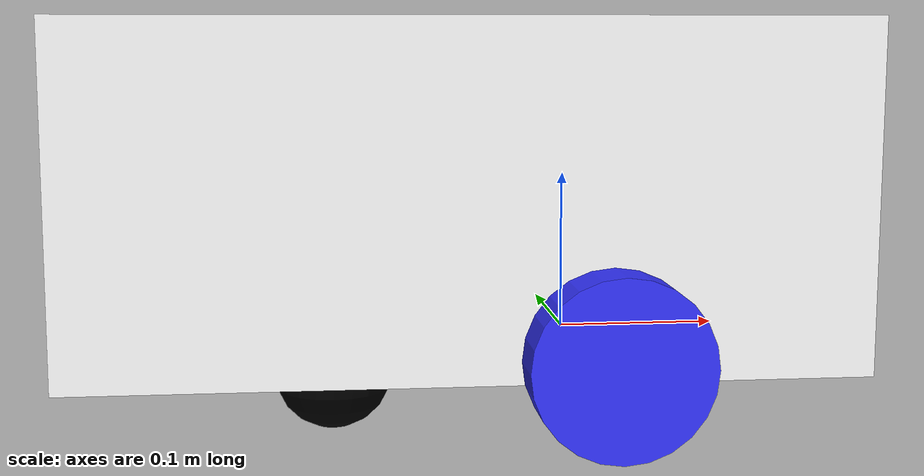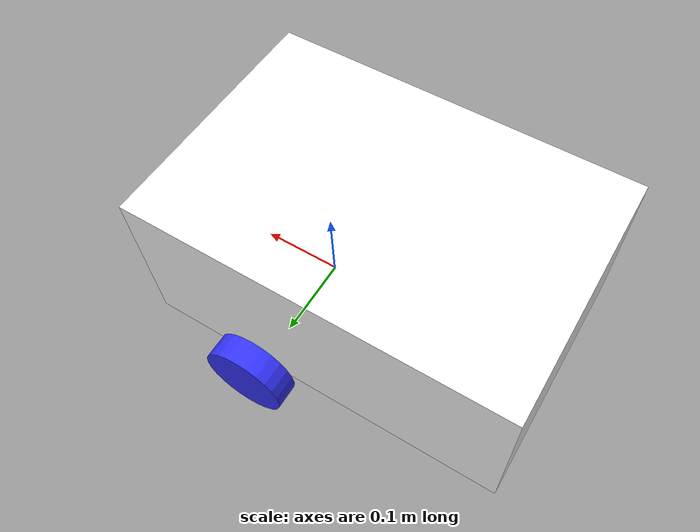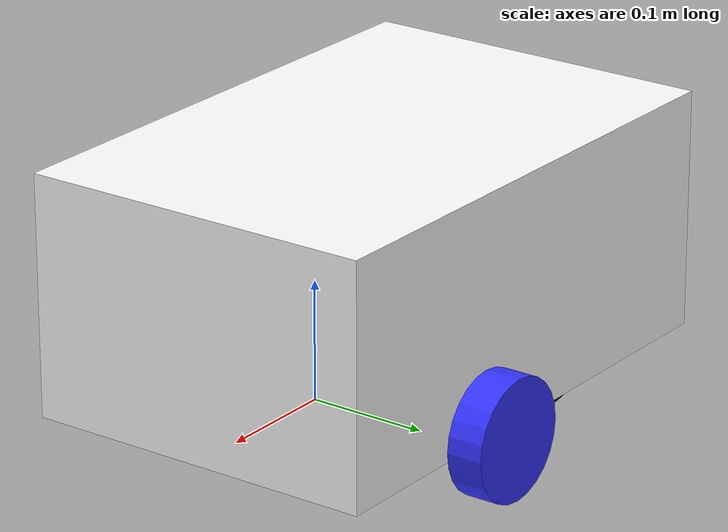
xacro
<?xml version="1.0"?>
<robot xmlns:xacro="http://www.ros.org/wiki/xacro" >

    <xacro:include filename="inertial_macros.xacro"/>

    <material name="white">
        <color rgba="1 1 1 1" />
    </material>

    <material name="orange">
        <color rgba="1 0.3 0.1 1"/>
    </material>

    <material name="blue">
        <color rgba="0.2 0.2 1 1"/>
    </material>

    <material name="black">
        <color rgba="0 0 0 1"/>
    </material>

    <!-- BASE LINK -->
    <link name="base_link"> </link>

        <!-- BASE_FOOTPRINT LINK -->

    <joint name="base_footprint_joint" type="fixed">
        <parent link="base_link"/>
        <child link="base_footprint"/>
        <origin xyz="0 0 0" rpy="0 0 0"/>
    </joint>

    <link name="base_footprint">
    </link>

    <!-- CHASSIS LINK -->
    <joint name="chassis_joint" type="fixed">
        <parent link="base_link"/>
        <child link="chassis"/>
        <origin xyz="-0.30 0 0"/>
    </joint>

    <link name="chassis">
        <visual>
            <origin xyz="0.225 0 0.1"/>
            <geometry>
                <box size="0.45 0.30 0.2"/>
            </geometry>
            <material name="white"/>
        </visual>
        <collision>
            <origin xyz="0.225 0 0.1"/>
            <geometry>
                <box size="0.45 0.30 0.2"/>
            </geometry>
            <material name="white"/>
        </collision>
        <xacro:inertial_box mass="1.5" x="0.45" y="0.3" z="0.2">
            <origin xyz="0.225 0 0.1" rpy="0 0 0"/>
        </xacro:inertial_box>
    </link>

    <gazebo reference="chassis">
        <material>Gazebo/White</material>
    </gazebo>

    <!-- LEFT WHEEL LINK -->
    <joint name="left_wheel_joint" type="continuous">
        <parent link="base_link"/>
        <child link="left_wheel"/>
        <origin xyz="0 0.175 0.016" rpy="-${pi/2} 0 0" />
        <axis xyz="0 0 1"/>
    </joint>

    <link name="left_wheel">
        <visual>
            <geometry>
                <cylinder radius="0.05" length="0.03"/>
            </geometry>
            <material name="blue"/>
        </visual>
        <collision>
            <geometry>
                <cylinder radius="0.05" length="0.03"/>
            </geometry>
            <material name="blue"/>
        </collision>
        <xacro:inertial_cylinder mass="0.1" length="0.03" radius="0.05">
            <origin xyz="0 0 0" rpy="0 0 0"/>
        </xacro:inertial_cylinder>
    </link>

    <gazebo reference="left_wheel">
        <material>Gazebo/Blue</material>
    </gazebo>

    <!-- RIGHT WHEEL LINK -->
    <joint name="right_wheel_joint" type="continuous">
        <parent link="base_link"/>
        <child link="right_wheel"/>
        <origin xyz="0 -0.175 0.016" rpy="${pi/2} 0 0" />
        <axis xyz="0 0 -1"/>
    </joint>

    <link name="right_wheel">
        <visual>
            <geometry>
                <cylinder radius="0.05" length="0.03"/>
            </geometry>
            <material name="blue"/>
        </visual>
        <collision>
            <geometry>
                <cylinder radius="0.05" length="0.03"/>
            </geometry>
            <material name="blue"/>
        </collision>
        <xacro:inertial_cylinder mass="0.1" length="0.03" radius="0.05">
            <origin xyz="0 0 0" rpy="0 0 0"/>
        </xacro:inertial_cylinder>
    </link>

    <gazebo reference="right_wheel">
        <material>Gazebo/Blue</material>
    </gazebo>

    <!-- LEFT CASTER WHEEL LINK -->
    <joint name="left_caster_wheel_joint" type="fixed">
        <parent link="chassis"/>
        <child link="left_caster_wheel"/>
        <origin xyz="0.15 0.1 0"/>
    </joint>

    <link name="left_caster_wheel">
        <visual>
            <geometry>
                <sphere radius="0.034"/>
            </geometry>
            <material name="black"/>
        </visual>
        <collision>
            <geometry>
                <sphere radius="0.034"/>
            </geometry>
            <material name="black"/>
        </collision>
        <xacro:inertial_sphere mass="0.05" radius="0.034">
            <origin xyz="0 0 0" rpy="0 0 0"/>
        </xacro:inertial_sphere>
    </link>

    <gazebo reference="left_caster_wheel">
        <material>Gazebo/Black</material>
        <mu1 value="0.001"/>
        <mu2 value="0.001"/>
    </gazebo>

    <!-- RIGHT CASTER WHEEL LINK -->
    <joint name="right_caster_wheel_joint" type="fixed">
        <parent link="chassis"/>
        <child link="right_caster_wheel"/>
        <origin xyz="0.15 -0.1 0"/>
    </joint>

    <link name="right_caster_wheel">
        <visual>
            <geometry>
                <sphere radius="0.034"/>
            </geometry>
            <material name="black"/>
        </visual>
        <collision>
            <geometry>
                <sphere radius="0.034"/>
            </geometry>
            <material name="black"/>
        </collision>
        <xacro:inertial_sphere mass="0.05" radius="0.034">
            <origin xyz="0 0 0" rpy="0 0 0"/>
        </xacro:inertial_sphere>
    </link>

    <gazebo reference="right_caster_wheel">
        <material>Gazebo/Black</material>
        <mu1 value="0.001"/>
        <mu2 value="0.001"/>
    </gazebo>

</robot>
